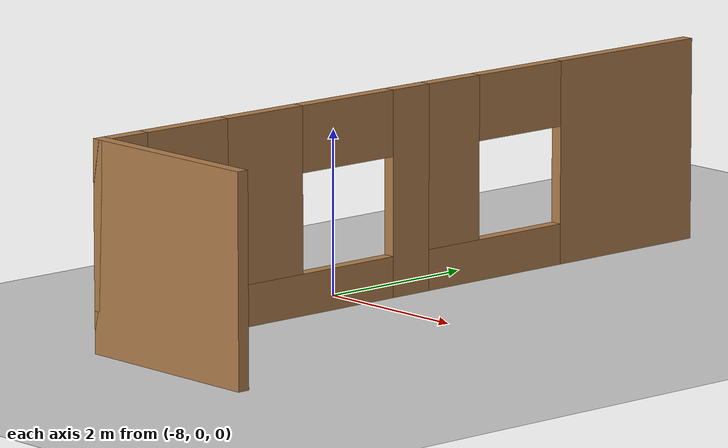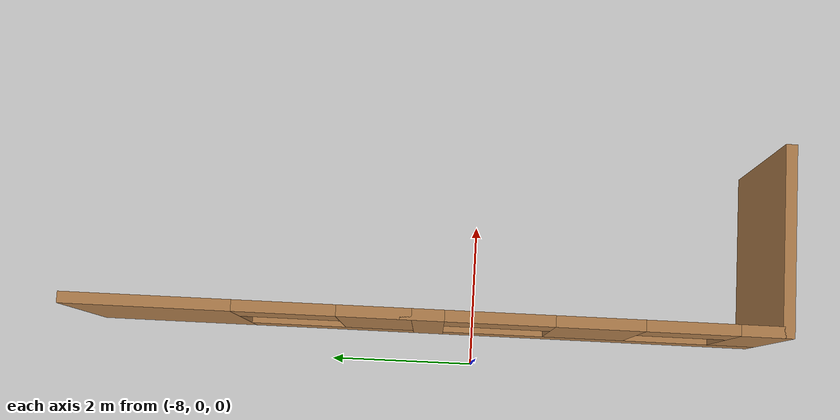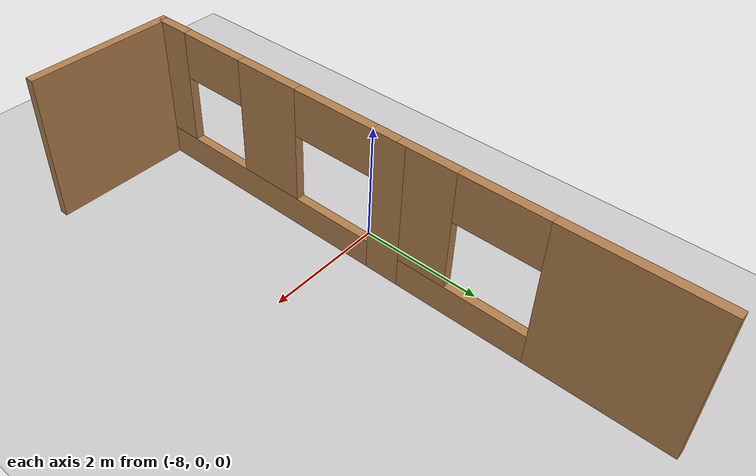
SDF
<sdf version="1.7">
 <world name="simple_house">
  <model name="ground_plane">
   <static>1</static>
   <link name="link">
    <collision name="collision">
     <geometry><plane><normal>0 0 1</normal><size>100 100</size></plane></geometry>
     <surface><friction><ode><mu>100</mu><mu2>50</mu2></ode></friction></surface>
    </collision>
    <visual name="visual">
     <cast_shadows>0</cast_shadows>
     <geometry><plane><normal>0 0 1</normal><size>100 100</size></plane></geometry>
     <material>
      <script><uri>file://media/materials/scripts/gazebo.material</uri><name>Gazebo/Grey</name></script>
     </material>
    </visual>
   </link>
  </model>
  <model name="Wall_85">
   <static>1</static>
   <link name="Wall_85_link">
    <pose>-7.5 3.1 0 0 0 -1.5708</pose>
    <visual name="Wall_85_Visual_3">
     <pose>0.62212 0 2.1 0 -0 0</pose>
     <geometry><box><size>1.332 0.15 0.8</size></box></geometry>
     <material>
      <script><uri>file://media/materials/scripts/gazebo.material</uri><name>Gazebo/Wood</name></script>
      <ambient>1 1 1 1</ambient>
      <diffuse>1 1 1 1</diffuse>
      <specular>0.2 0.2 0.2 1</specular>
      <emissive>0 0 0 1</emissive>
     </material>
    </visual>
    <visual name="Wall_85_Visual_2">
     <pose>1.76906 0 1.5 0 -0 0</pose>
     <geometry><box><size>0.96188 0.15 2</size></box></geometry>
     <material>
      <script><uri>file://media/materials/scripts/gazebo.material</uri><name>Gazebo/Wood</name></script>
      <ambient>1 1 1 1</ambient>
      <diffuse>1 1 1 1</diffuse>
      <specular>0.2 0.2 0.2 1</specular>
      <emissive>0 0 0 1</emissive>
     </material>
    </visual>
    <visual name="Wall_85_Visual_0">
     <pose>-1.14694 0 1.25 0 -0 0</pose>
     <geometry><box><size>2.20612 0.15 2.5</size></box></geometry>
     <material>
      <script><uri>file://media/materials/scripts/gazebo.material</uri><name>Gazebo/Wood</name></script>
      <ambient>1 1 1 1</ambient>
      <diffuse>1 1 1 1</diffuse>
      <specular>0.2 0.2 0.2 1</specular>
      <emissive>0 0 0 1</emissive>
     </material>
    </visual>
    <visual name="Wall_85_Visual_1">
     <pose>1.10306 0 0.25 0 -0 0</pose>
     <geometry><box><size>2.29388 0.15 0.5</size></box></geometry>
     <material>
      <script><uri>file://media/materials/scripts/gazebo.material</uri><name>Gazebo/Wood</name></script>
      <ambient>1 1 1 1</ambient>
      <diffuse>1 1 1 1</diffuse>
      <specular>0.2 0.2 0.2 1</specular>
      <emissive>0 0 0 1</emissive>
     </material>
    </visual>
    <collision name="Wall_85_Collision_3">
     <pose>0.62212 0 2.1 0 -0 0</pose>
     <geometry><box><size>1.332 0.15 0.8</size></box></geometry>
     <surface>
      <friction>
       <ode><mu>1</mu><mu2>1</mu2><fdir1>0 0 0</fdir1><slip1>0</slip1><slip2>0</slip2></ode>
       <torsional>
        <coefficient>1</coefficient>
        <patch_radius>0</patch_radius>
        <surface_radius>0</surface_radius>
        <use_patch_radius>1</use_patch_radius>
        <ode><slip>0</slip></ode>
       </torsional>
      </friction>
      <bounce><restitution_coefficient>0</restitution_coefficient><threshold>1e+06</threshold></bounce>
      <contact>
       <collide_without_contact>0</collide_without_contact>
       <collide_without_contact_bitmask>1</collide_without_contact_bitmask>
       <collide_bitmask>1</collide_bitmask>
       <ode>
        <soft_cfm>0</soft_cfm>
        <soft_erp>0.2</soft_erp>
        <kp>1e+13</kp>
        <kd>1</kd>
        <max_vel>0.01</max_vel>
        <min_depth>0</min_depth>
       </ode>
       <bullet>
        <split_impulse>1</split_impulse>
        <split_impulse_penetration_threshold>-0.01</split_impulse_penetration_threshold>
        <soft_cfm>0</soft_cfm>
        <soft_erp>0.2</soft_erp>
        <kp>1e+13</kp>
        <kd>1</kd>
       </bullet>
      </contact>
     </surface>
    </collision>
    <collision name="Wall_85_Collision_2">
     <pose>1.76906 0 1.5 0 -0 0</pose>
     <geometry><box><size>0.96188 0.15 2</size></box></geometry>
     <surface>
      <friction>
       <ode><mu>1</mu><mu2>1</mu2><fdir1>0 0 0</fdir1><slip1>0</slip1><slip2>0</slip2></ode>
       <torsional>
        <coefficient>1</coefficient>
        <patch_radius>0</patch_radius>
        <surface_radius>0</surface_radius>
        <use_patch_radius>1</use_patch_radius>
        <ode><slip>0</slip></ode>
       </torsional>
      </friction>
      <bounce><restitution_coefficient>0</restitution_coefficient><threshold>1e+06</threshold></bounce>
      <contact>
       <collide_without_contact>0</collide_without_contact>
       <collide_without_contact_bitmask>1</collide_without_contact_bitmask>
       <collide_bitmask>1</collide_bitmask>
       <ode>
        <soft_cfm>0</soft_cfm>
        <soft_erp>0.2</soft_erp>
        <kp>1e+13</kp>
        <kd>1</kd>
        <max_vel>0.01</max_vel>
        <min_depth>0</min_depth>
       </ode>
       <bullet>
        <split_impulse>1</split_impulse>
        <split_impulse_penetration_threshold>-0.01</split_impulse_penetration_threshold>
        <soft_cfm>0</soft_cfm>
        <soft_erp>0.2</soft_erp>
        <kp>1e+13</kp>
        <kd>1</kd>
       </bullet>
      </contact>
     </surface>
    </collision>
    <collision name="Wall_85_Collision_1">
     <pose>1.10306 0 0.25 0 -0 0</pose>
     <geometry><box><size>2.29388 0.15 0.5</size></box></geometry>
     <surface>
      <friction>
       <ode><mu>1</mu><mu2>1</mu2><fdir1>0 0 0</fdir1><slip1>0</slip1><slip2>0</slip2></ode>
       <torsional>
        <coefficient>1</coefficient>
        <patch_radius>0</patch_radius>
        <surface_radius>0</surface_radius>
        <use_patch_radius>1</use_patch_radius>
        <ode><slip>0</slip></ode>
       </torsional>
      </friction>
      <bounce><restitution_coefficient>0</restitution_coefficient><threshold>1e+06</threshold></bounce>
      <contact>
       <collide_without_contact>0</collide_without_contact>
       <collide_without_contact_bitmask>1</collide_without_contact_bitmask>
       <collide_bitmask>1</collide_bitmask>
       <ode>
        <soft_cfm>0</soft_cfm>
        <soft_erp>0.2</soft_erp>
        <kp>1e+13</kp>
        <kd>1</kd>
        <max_vel>0.01</max_vel>
        <min_depth>0</min_depth>
       </ode>
       <bullet>
        <split_impulse>1</split_impulse>
        <split_impulse_penetration_threshold>-0.01</split_impulse_penetration_threshold>
        <soft_cfm>0</soft_cfm>
        <soft_erp>0.2</soft_erp>
        <kp>1e+13</kp>
        <kd>1</kd>
       </bullet>
      </contact>
     </surface>
    </collision>
    <collision name="Wall_85_Collision_0">
     <pose>-1.14694 0 1.25 0 -0 0</pose>
     <geometry><box><size>2.20612 0.15 2.5</size></box></geometry>
     <surface>
      <friction>
       <ode><mu>1</mu><mu2>1</mu2><fdir1>0 0 0</fdir1><slip1>0</slip1><slip2>0</slip2></ode>
       <torsional>
        <coefficient>1</coefficient>
        <patch_radius>0</patch_radius>
        <surface_radius>0</surface_radius>
        <use_patch_radius>1</use_patch_radius>
        <ode><slip>0</slip></ode>
       </torsional>
      </friction>
      <bounce><restitution_coefficient>0</restitution_coefficient><threshold>1e+06</threshold></bounce>
      <contact>
       <collide_without_contact>0</collide_without_contact>
       <collide_without_contact_bitmask>1</collide_without_contact_bitmask>
       <collide_bitmask>1</collide_bitmask>
       <ode>
        <soft_cfm>0</soft_cfm>
        <soft_erp>0.2</soft_erp>
        <kp>1e+13</kp>
        <kd>1</kd>
        <max_vel>0.01</max_vel>
        <min_depth>0</min_depth>
       </ode>
       <bullet>
        <split_impulse>1</split_impulse>
        <split_impulse_penetration_threshold>-0.01</split_impulse_penetration_threshold>
        <soft_cfm>0</soft_cfm>
        <soft_erp>0.2</soft_erp>
        <kp>1e+13</kp>
        <kd>1</kd>
       </bullet>
      </contact>
     </surface>
    </collision>
   </link>
  </model>
  <model name="Wall_86">
   <static>1</static>
   <link name="Wall_86_link">
    <pose>-7.5 -1.5 0 0 0 -1.5708</pose>
    <visual name="Wall_86_Visual_1">
     <pose>0.28462 0 0.25 0 -0 0</pose>
     <geometry><box><size>4.43076 0.15 0.5</size></box></geometry>
     <material>
      <script><uri>file://media/materials/scripts/gazebo.material</uri><name>Gazebo/Wood</name></script>
      <ambient>1 1 1 1</ambient>
      <diffuse>1 1 1 1</diffuse>
      <specular>0.2 0.2 0.2 1</specular>
      <emissive>0 0 0 1</emissive>
     </material>
    </visual>
    <visual name="Wall_86_Visual_4">
     <pose>-1.22476 0 2.1 0 -0 0</pose>
     <geometry><box><size>1.412 0.15 0.8</size></box></geometry>
     <material>
      <script><uri>file://media/materials/scripts/gazebo.material</uri><name>Gazebo/Wood</name></script>
      <ambient>1 1 1 1</ambient>
      <diffuse>1 1 1 1</diffuse>
      <specular>0.2 0.2 0.2 1</specular>
      <emissive>0 0 0 1</emissive>
     </material>
    </visual>
    <visual name="Wall_86_Visual_0">
     <pose>-2.21538 0 1.25 0 -0 0</pose>
     <geometry><box><size>0.569241 0.15 2.5</size></box></geometry>
     <material>
      <script><uri>file://media/materials/scripts/gazebo.material</uri><name>Gazebo/Wood</name></script>
      <ambient>1 1 1 1</ambient>
      <diffuse>1 1 1 1</diffuse>
      <specular>0.2 0.2 0.2 1</specular>
      <emissive>0 0 0 1</emissive>
     </material>
    </visual>
    <visual name="Wall_86_Visual_5">
     <pose>1.22246 0 2.1 0 -0 0</pose>
     <geometry><box><size>1.199 0.15 0.8</size></box></geometry>
     <material>
      <script><uri>file://media/materials/scripts/gazebo.material</uri><name>Gazebo/Wood</name></script>
      <ambient>1 1 1 1</ambient>
      <diffuse>1 1 1 1</diffuse>
      <specular>0.2 0.2 0.2 1</specular>
      <emissive>0 0 0 1</emissive>
     </material>
    </visual>
    <visual name="Wall_86_Visual_2">
     <pose>0.0521 0 1.5 0 -0 0</pose>
     <geometry><box><size>1.14172 0.15 2</size></box></geometry>
     <material>
      <script><uri>file://media/materials/scripts/gazebo.material</uri><name>Gazebo/Wood</name></script>
      <ambient>1 1 1 1</ambient>
      <diffuse>1 1 1 1</diffuse>
      <specular>0.2 0.2 0.2 1</specular>
      <emissive>0 0 0 1</emissive>
     </material>
    </visual>
    <visual name="Wall_86_Visual_3">
     <pose>2.16098 0 1.5 0 -0 0</pose>
     <geometry><box><size>0.678041 0.15 2</size></box></geometry>
     <material>
      <script><uri>file://media/materials/scripts/gazebo.material</uri><name>Gazebo/Wood</name></script>
      <ambient>1 1 1 1</ambient>
      <diffuse>1 1 1 1</diffuse>
      <specular>0.2 0.2 0.2 1</specular>
      <emissive>0 0 0 1</emissive>
     </material>
    </visual>
    <collision name="Wall_86_Collision_4">
     <pose>-1.22476 0 2.1 0 -0 0</pose>
     <geometry><box><size>1.412 0.15 0.8</size></box></geometry>
     <surface>
      <friction>
       <ode><mu>1</mu><mu2>1</mu2><fdir1>0 0 0</fdir1><slip1>0</slip1><slip2>0</slip2></ode>
       <torsional>
        <coefficient>1</coefficient>
        <patch_radius>0</patch_radius>
        <surface_radius>0</surface_radius>
        <use_patch_radius>1</use_patch_radius>
        <ode><slip>0</slip></ode>
       </torsional>
      </friction>
      <bounce><restitution_coefficient>0</restitution_coefficient><threshold>1e+06</threshold></bounce>
      <contact>
       <collide_without_contact>0</collide_without_contact>
       <collide_without_contact_bitmask>1</collide_without_contact_bitmask>
       <collide_bitmask>1</collide_bitmask>
       <ode>
        <soft_cfm>0</soft_cfm>
        <soft_erp>0.2</soft_erp>
        <kp>1e+13</kp>
        <kd>1</kd>
        <max_vel>0.01</max_vel>
        <min_depth>0</min_depth>
       </ode>
       <bullet>
        <split_impulse>1</split_impulse>
        <split_impulse_penetration_threshold>-0.01</split_impulse_penetration_threshold>
        <soft_cfm>0</soft_cfm>
        <soft_erp>0.2</soft_erp>
        <kp>1e+13</kp>
        <kd>1</kd>
       </bullet>
      </contact>
     </surface>
    </collision>
    <collision name="Wall_86_Collision_5">
     <pose>1.22246 0 2.1 0 -0 0</pose>
     <geometry><box><size>1.199 0.15 0.8</size></box></geometry>
     <surface>
      <friction>
       <ode><mu>1</mu><mu2>1</mu2><fdir1>0 0 0</fdir1><slip1>0</slip1><slip2>0</slip2></ode>
       <torsional>
        <coefficient>1</coefficient>
        <patch_radius>0</patch_radius>
        <surface_radius>0</surface_radius>
        <use_patch_radius>1</use_patch_radius>
        <ode><slip>0</slip></ode>
       </torsional>
      </friction>
      <bounce><restitution_coefficient>0</restitution_coefficient><threshold>1e+06</threshold></bounce>
      <contact>
       <collide_without_contact>0</collide_without_contact>
       <collide_without_contact_bitmask>1</collide_without_contact_bitmask>
       <collide_bitmask>1</collide_bitmask>
       <ode>
        <soft_cfm>0</soft_cfm>
        <soft_erp>0.2</soft_erp>
        <kp>1e+13</kp>
        <kd>1</kd>
        <max_vel>0.01</max_vel>
        <min_depth>0</min_depth>
       </ode>
       <bullet>
        <split_impulse>1</split_impulse>
        <split_impulse_penetration_threshold>-0.01</split_impulse_penetration_threshold>
        <soft_cfm>0</soft_cfm>
        <soft_erp>0.2</soft_erp>
        <kp>1e+13</kp>
        <kd>1</kd>
       </bullet>
      </contact>
     </surface>
    </collision>
    <collision name="Wall_86_Collision_2">
     <pose>0.0521 0 1.5 0 -0 0</pose>
     <geometry><box><size>1.14172 0.15 2</size></box></geometry>
     <surface>
      <friction>
       <ode><mu>1</mu><mu2>1</mu2><fdir1>0 0 0</fdir1><slip1>0</slip1><slip2>0</slip2></ode>
       <torsional>
        <coefficient>1</coefficient>
        <patch_radius>0</patch_radius>
        <surface_radius>0</surface_radius>
        <use_patch_radius>1</use_patch_radius>
        <ode><slip>0</slip></ode>
       </torsional>
      </friction>
      <bounce><restitution_coefficient>0</restitution_coefficient><threshold>1e+06</threshold></bounce>
      <contact>
       <collide_without_contact>0</collide_without_contact>
       <collide_without_contact_bitmask>1</collide_without_contact_bitmask>
       <collide_bitmask>1</collide_bitmask>
       <ode>
        <soft_cfm>0</soft_cfm>
        <soft_erp>0.2</soft_erp>
        <kp>1e+13</kp>
        <kd>1</kd>
        <max_vel>0.01</max_vel>
        <min_depth>0</min_depth>
       </ode>
       <bullet>
        <split_impulse>1</split_impulse>
        <split_impulse_penetration_threshold>-0.01</split_impulse_penetration_threshold>
        <soft_cfm>0</soft_cfm>
        <soft_erp>0.2</soft_erp>
        <kp>1e+13</kp>
        <kd>1</kd>
       </bullet>
      </contact>
     </surface>
    </collision>
    <collision name="Wall_86_Collision_1">
     <pose>0.28462 0 0.25 0 -0 0</pose>
     <geometry><box><size>4.43076 0.15 0.5</size></box></geometry>
     <surface>
      <friction>
       <ode><mu>1</mu><mu2>1</mu2><fdir1>0 0 0</fdir1><slip1>0</slip1><slip2>0</slip2></ode>
       <torsional>
        <coefficient>1</coefficient>
        <patch_radius>0</patch_radius>
        <surface_radius>0</surface_radius>
        <use_patch_radius>1</use_patch_radius>
        <ode><slip>0</slip></ode>
       </torsional>
      </friction>
      <bounce><restitution_coefficient>0</restitution_coefficient><threshold>1e+06</threshold></bounce>
      <contact>
       <collide_without_contact>0</collide_without_contact>
       <collide_without_contact_bitmask>1</collide_without_contact_bitmask>
       <collide_bitmask>1</collide_bitmask>
       <ode>
        <soft_cfm>0</soft_cfm>
        <soft_erp>0.2</soft_erp>
        <kp>1e+13</kp>
        <kd>1</kd>
        <max_vel>0.01</max_vel>
        <min_depth>0</min_depth>
       </ode>
       <bullet>
        <split_impulse>1</split_impulse>
        <split_impulse_penetration_threshold>-0.01</split_impulse_penetration_threshold>
        <soft_cfm>0</soft_cfm>
        <soft_erp>0.2</soft_erp>
        <kp>1e+13</kp>
        <kd>1</kd>
       </bullet>
      </contact>
     </surface>
    </collision>
    <collision name="Wall_86_Collision_3">
     <pose>2.16098 0 1.5 0 -0 0</pose>
     <geometry><box><size>0.678041 0.15 2</size></box></geometry>
     <surface>
      <friction>
       <ode><mu>1</mu><mu2>1</mu2><fdir1>0 0 0</fdir1><slip1>0</slip1><slip2>0</slip2></ode>
       <torsional>
        <coefficient>1</coefficient>
        <patch_radius>0</patch_radius>
        <surface_radius>0</surface_radius>
        <use_patch_radius>1</use_patch_radius>
        <ode><slip>0</slip></ode>
       </torsional>
      </friction>
      <bounce><restitution_coefficient>0</restitution_coefficient><threshold>1e+06</threshold></bounce>
      <contact>
       <collide_without_contact>0</collide_without_contact>
       <collide_without_contact_bitmask>1</collide_without_contact_bitmask>
       <collide_bitmask>1</collide_bitmask>
       <ode>
        <soft_cfm>0</soft_cfm>
        <soft_erp>0.2</soft_erp>
        <kp>1e+13</kp>
        <kd>1</kd>
        <max_vel>0.01</max_vel>
        <min_depth>0</min_depth>
       </ode>
       <bullet>
        <split_impulse>1</split_impulse>
        <split_impulse_penetration_threshold>-0.01</split_impulse_penetration_threshold>
        <soft_cfm>0</soft_cfm>
        <soft_erp>0.2</soft_erp>
        <kp>1e+13</kp>
        <kd>1</kd>
       </bullet>
      </contact>
     </surface>
    </collision>
    <collision name="Wall_86_Collision_0">
     <pose>-2.21538 0 1.25 0 -0 0</pose>
     <geometry><box><size>0.569241 0.15 2.5</size></box></geometry>
     <surface>
      <friction>
       <ode><mu>1</mu><mu2>1</mu2><fdir1>0 0 0</fdir1><slip1>0</slip1><slip2>0</slip2></ode>
       <torsional>
        <coefficient>1</coefficient>
        <patch_radius>0</patch_radius>
        <surface_radius>0</surface_radius>
        <use_patch_radius>1</use_patch_radius>
        <ode><slip>0</slip></ode>
       </torsional>
      </friction>
      <bounce><restitution_coefficient>0</restitution_coefficient><threshold>1e+06</threshold></bounce>
      <contact>
       <collide_without_contact>0</collide_without_contact>
       <collide_without_contact_bitmask>1</collide_without_contact_bitmask>
       <collide_bitmask>1</collide_bitmask>
       <ode>
        <soft_cfm>0</soft_cfm>
        <soft_erp>0.2</soft_erp>
        <kp>1e+13</kp>
        <kd>1</kd>
        <max_vel>0.01</max_vel>
        <min_depth>0</min_depth>
       </ode>
       <bullet>
        <split_impulse>1</split_impulse>
        <split_impulse_penetration_threshold>-0.01</split_impulse_penetration_threshold>
        <soft_cfm>0</soft_cfm>
        <soft_erp>0.2</soft_erp>
        <kp>1e+13</kp>
        <kd>1</kd>
       </bullet>
      </contact>
     </surface>
    </collision>
   </link>
  </model>
  <model name="Wall_87">
   <static>1</static>
   <link name="Wall_87_link">
    <pose>-6.325 -3.925 0 0 -0 0</pose>
    <visual name="Wall_87_Visual">
     <pose>0 0 1.25 0 -0 0</pose>
     <geometry><box><size>2.5 0.15 2.5</size></box></geometry>
     <material>
      <script><uri>file://media/materials/scripts/gazebo.material</uri><name>Gazebo/Wood</name></script>
      <ambient>1 1 1 1</ambient>
      <diffuse>1 1 1 1</diffuse>
      <specular>0.2 0.2 0.2 1</specular>
      <emissive>0 0 0 1</emissive>
     </material>
    </visual>
    <collision name="Wall_87_Collision">
     <pose>0 0 1.25 0 -0 0</pose>
     <geometry><box><size>2.5 0.15 2.5</size></box></geometry>
     <surface>
      <friction>
       <ode><mu>1</mu><mu2>1</mu2><fdir1>0 0 0</fdir1><slip1>0</slip1><slip2>0</slip2></ode>
       <torsional>
        <coefficient>1</coefficient>
        <patch_radius>0</patch_radius>
        <surface_radius>0</surface_radius>
        <use_patch_radius>1</use_patch_radius>
        <ode><slip>0</slip></ode>
       </torsional>
      </friction>
      <bounce><restitution_coefficient>0</restitution_coefficient><threshold>1e+06</threshold></bounce>
      <contact>
       <collide_without_contact>0</collide_without_contact>
       <collide_without_contact_bitmask>1</collide_without_contact_bitmask>
       <collide_bitmask>1</collide_bitmask>
       <ode>
        <soft_cfm>0</soft_cfm>
        <soft_erp>0.2</soft_erp>
        <kp>1e+13</kp>
        <kd>1</kd>
        <max_vel>0.01</max_vel>
        <min_depth>0</min_depth>
       </ode>
       <bullet>
        <split_impulse>1</split_impulse>
        <split_impulse_penetration_threshold>-0.01</split_impulse_penetration_threshold>
        <soft_cfm>0</soft_cfm>
        <soft_erp>0.2</soft_erp>
        <kp>1e+13</kp>
        <kd>1</kd>
       </bullet>
      </contact>
     </surface>
    </collision>
   </link>
  </model>
 </world>
</sdf>
